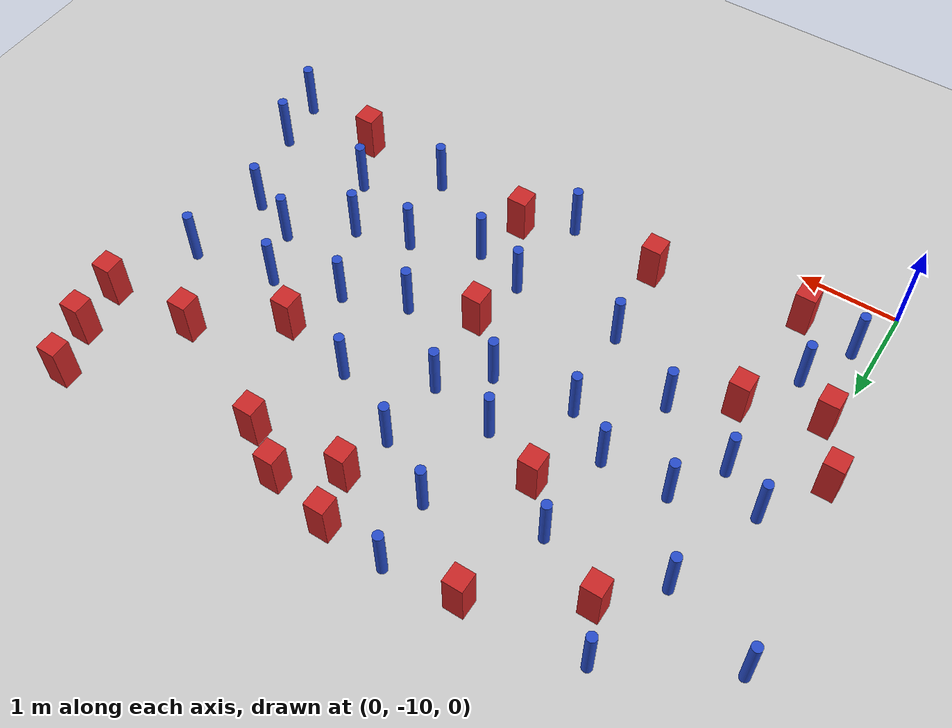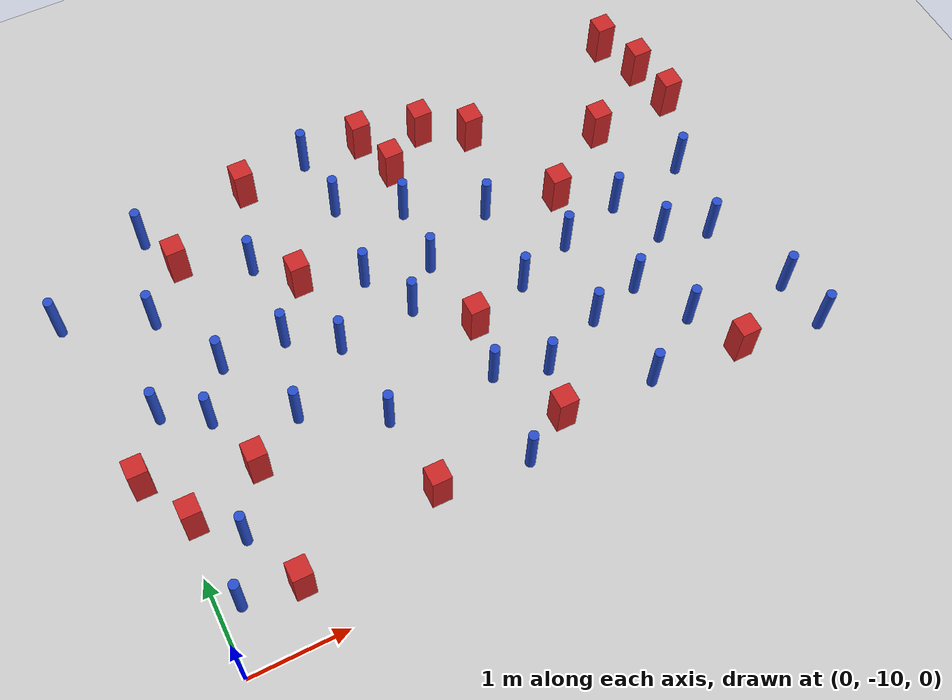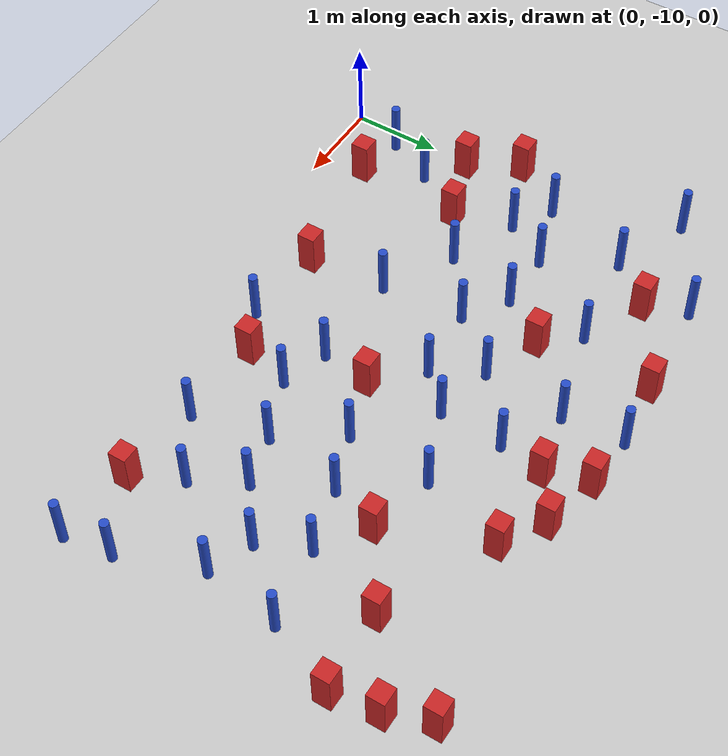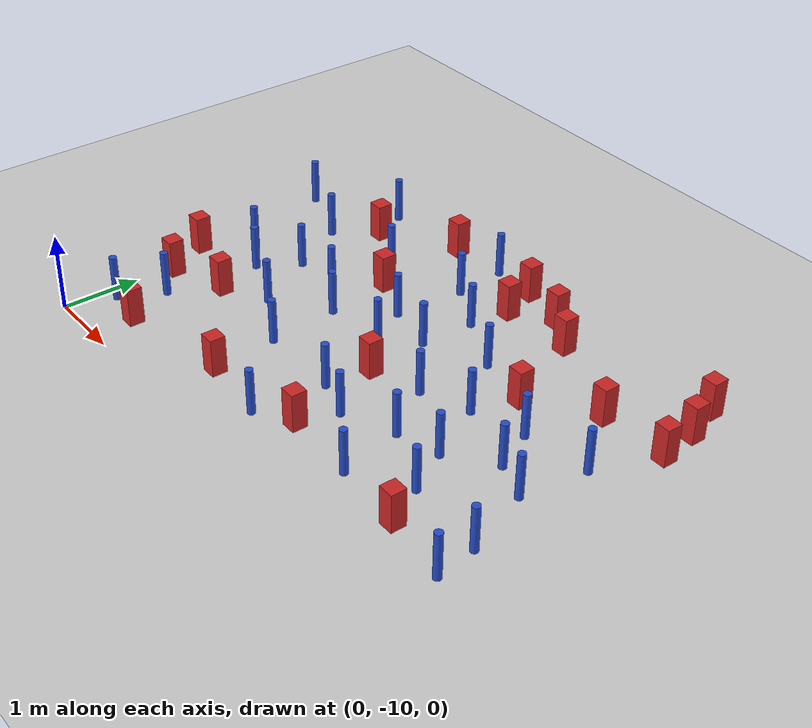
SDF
<sdf version="1.6">
 <world name="default">
  <model name="ground_plane">
   <static>1</static>
   <link name="link">
    <collision name="collision">
     <geometry><plane><normal>0 0 1</normal><size>100 100</size></plane></geometry>
     <surface><friction><ode><mu>100</mu><mu2>50</mu2></ode></friction></surface>
    </collision>
    <visual name="visual">
     <cast_shadows>0</cast_shadows>
     <geometry><plane><normal>0 0 1</normal><size>100 100</size></plane></geometry>
     <material>
      <ambient>1.0 1.0 1.0 1.0</ambient>
      <diffuse>0.8 0.8 0.8 1.0</diffuse>
      <specular>0.01 0.01 0.01 1.000000</specular>
     </material>
    </visual>
   </link>
  </model>
  <model name="pole_obstacle6">
   <static>true</static>
   <pose>0.202433005379 -7.33911236088 -9.47619616065e-06 5.49618799737e-07 2.36310414069e-07 -1.55090534795e-07</pose>
   <link name="link">
    <pose>0 0 0.3 0 -0 0</pose>
    <inertial>
     <mass>1</mass>
     <inertia><ixx>0.145833</ixx><ixy>0</ixy><ixz>0</ixz><iyy>0.145833</iyy><iyz>0</iyz><izz>0.125</izz></inertia>
    </inertial>
    <collision name="collision">
     <geometry><cylinder><radius>0.05</radius><length>.6</length></cylinder></geometry>
    </collision>
    <visual name="visual">
     <geometry><cylinder><radius>0.05</radius><length>.6</length></cylinder></geometry>
     <material>
      <script><name>Gazebo/Blue</name><uri>file://media/materials/scripts/gazebo.material</uri></script>
     </material>
    </visual>
   </link>
  </model>
  <model name="square_post_obstacle20">
   <static>true</static>
   <pose>1.99056706824 -6.56412992524 -6.11067671241e-07 -5.50515727128e-06 -8.79689657224e-07 2.37013304536e-05</pose>
   <link name="link">
    <pose>0 0 0.25 0 -0 0</pose>
    <inertial>
     <mass>100</mass>
     <inertia>
      <ixx>0.166667</ixx>
      <ixy>0</ixy>
      <ixz>0</ixz>
      <iyy>0.166667</iyy>
      <iyz>0</iyz>
      <izz>0.166667</izz>
     </inertia>
    </inertial>
    <collision name="collision"><geometry><box><size>.2 .2 .5</size></box></geometry></collision>
    <visual name="visual">
     <geometry><box><size>.2 .2 .5</size></box></geometry>
     <material>
      <script><name>Gazebo/Red</name><uri>file://media/materials/scripts/gazebo.material</uri></script>
     </material>
    </visual>
   </link>
  </model>
  <model name="pole_obstacle17">
   <static>true</static>
   <pose>0.529014926173 -6.34254856775 -9.47619616065e-06 5.49618799737e-07 2.36310414064e-07 -1.55090534796e-07</pose>
   <link name="link">
    <pose>0 0 0.3 0 -0 0</pose>
    <inertial>
     <mass>1</mass>
     <inertia><ixx>0.145833</ixx><ixy>0</ixy><ixz>0</ixz><iyy>0.145833</iyy><iyz>0</iyz><izz>0.125</izz></inertia>
    </inertial>
    <collision name="collision">
     <geometry><cylinder><radius>0.05</radius><length>.6</length></cylinder></geometry>
    </collision>
    <visual name="visual">
     <geometry><cylinder><radius>0.05</radius><length>.6</length></cylinder></geometry>
     <material>
      <script><name>Gazebo/Blue</name><uri>file://media/materials/scripts/gazebo.material</uri></script>
     </material>
    </visual>
   </link>
  </model>
  <model name="square_post_obstacle24">
   <static>true</static>
   <pose>6.39824471717 -5.68714983444 -6.11067671241e-07 -5.50515727128e-06 -8.79689657224e-07 2.37013304536e-05</pose>
   <link name="link">
    <pose>0 0 0.25 0 -0 0</pose>
    <inertial>
     <mass>100</mass>
     <inertia>
      <ixx>0.166667</ixx>
      <ixy>0</ixy>
      <ixz>0</ixz>
      <iyy>0.166667</iyy>
      <iyz>0</iyz>
      <izz>0.166667</izz>
     </inertia>
    </inertial>
    <collision name="collision"><geometry><box><size>.2 .2 .5</size></box></geometry></collision>
    <visual name="visual">
     <geometry><box><size>.2 .2 .5</size></box></geometry>
     <material>
      <script><name>Gazebo/Red</name><uri>file://media/materials/scripts/gazebo.material</uri></script>
     </material>
    </visual>
   </link>
  </model>
  <model name="pole_obstacle24">
   <static>true</static>
   <pose>1.38895360051 -7.91625873299 -9.47619616065e-06 5.49618799737e-07 2.36310414061e-07 -1.550905348e-07</pose>
   <link name="link">
    <pose>0 0 0.3 0 -0 0</pose>
    <inertial>
     <mass>1</mass>
     <inertia><ixx>0.145833</ixx><ixy>0</ixy><ixz>0</ixz><iyy>0.145833</iyy><iyz>0</iyz><izz>0.125</izz></inertia>
    </inertial>
    <collision name="collision">
     <geometry><cylinder><radius>0.05</radius><length>.6</length></cylinder></geometry>
    </collision>
    <visual name="visual">
     <geometry><cylinder><radius>0.05</radius><length>.6</length></cylinder></geometry>
     <material>
      <script><name>Gazebo/Blue</name><uri>file://media/materials/scripts/gazebo.material</uri></script>
     </material>
    </visual>
   </link>
  </model>
  <model name="pole_obstacle26">
   <static>true</static>
   <pose>1.60109463014 -7.09741458702 -9.47619616065e-06 5.49618799737e-07 2.36310414061e-07 -1.550905348e-07</pose>
   <link name="link">
    <pose>0 0 0.3 0 -0 0</pose>
    <inertial>
     <mass>1</mass>
     <inertia><ixx>0.145833</ixx><ixy>0</ixy><ixz>0</ixz><iyy>0.145833</iyy><iyz>0</iyz><izz>0.125</izz></inertia>
    </inertial>
    <collision name="collision">
     <geometry><cylinder><radius>0.05</radius><length>.6</length></cylinder></geometry>
    </collision>
    <visual name="visual">
     <geometry><cylinder><radius>0.05</radius><length>.6</length></cylinder></geometry>
     <material>
      <script><name>Gazebo/Blue</name><uri>file://media/materials/scripts/gazebo.material</uri></script>
     </material>
    </visual>
   </link>
  </model>
  <model name="pole_obstacle28">
   <static>true</static>
   <pose>4.61884856585 -9.07026900919 -9.47619616065e-06 5.49618799737e-07 2.36310414065e-07 -1.55090534796e-07</pose>
   <link name="link">
    <pose>0 0 0.3 0 -0 0</pose>
    <inertial>
     <mass>1</mass>
     <inertia><ixx>0.145833</ixx><ixy>0</ixy><ixz>0</ixz><iyy>0.145833</iyy><iyz>0</iyz><izz>0.125</izz></inertia>
    </inertial>
    <collision name="collision">
     <geometry><cylinder><radius>0.05</radius><length>.6</length></cylinder></geometry>
    </collision>
    <visual name="visual">
     <geometry><cylinder><radius>0.05</radius><length>.6</length></cylinder></geometry>
     <material>
      <script><name>Gazebo/Blue</name><uri>file://media/materials/scripts/gazebo.material</uri></script>
     </material>
    </visual>
   </link>
  </model>
  <model name="pole_obstacle38">
   <static>true</static>
   <pose>6.01574682659 -7.84614838211 -9.47619616065e-06 5.49618799737e-07 2.36310414037e-07 -1.55090534814e-07</pose>
   <link name="link">
    <pose>0 0 0.3 0 -0 0</pose>
    <inertial>
     <mass>1</mass>
     <inertia><ixx>0.145833</ixx><ixy>0</ixy><ixz>0</ixz><iyy>0.145833</iyy><iyz>0</iyz><izz>0.125</izz></inertia>
    </inertial>
    <collision name="collision">
     <geometry><cylinder><radius>0.05</radius><length>.6</length></cylinder></geometry>
    </collision>
    <visual name="visual">
     <geometry><cylinder><radius>0.05</radius><length>.6</length></cylinder></geometry>
     <material>
      <script><name>Gazebo/Blue</name><uri>file://media/materials/scripts/gazebo.material</uri></script>
     </material>
    </visual>
   </link>
  </model>
  <model name="square_post_obstacle39">
   <static>true</static>
   <pose>4.80716517699 -6.77869618184 -6.11067671241e-07 -5.50515727128e-06 -8.79689657224e-07 2.37013304536e-05</pose>
   <link name="link">
    <pose>0 0 0.25 0 -0 0</pose>
    <inertial>
     <mass>100</mass>
     <inertia>
      <ixx>0.166667</ixx>
      <ixy>0</ixy>
      <ixz>0</ixz>
      <iyy>0.166667</iyy>
      <iyz>0</iyz>
      <izz>0.166667</izz>
     </inertia>
    </inertial>
    <collision name="collision"><geometry><box><size>.2 .2 .5</size></box></geometry></collision>
    <visual name="visual">
     <geometry><box><size>.2 .2 .5</size></box></geometry>
     <material>
      <script><name>Gazebo/Red</name><uri>file://media/materials/scripts/gazebo.material</uri></script>
     </material>
    </visual>
   </link>
  </model>
  <model name="pole_obstacle41">
   <static>true</static>
   <pose>2.88102722438 -7.33411168156 -9.47619616065e-06 5.49618799738e-07 2.3631041406e-07 -1.55090534801e-07</pose>
   <link name="link">
    <pose>0 0 0.3 0 -0 0</pose>
    <inertial>
     <mass>1</mass>
     <inertia><ixx>0.145833</ixx><ixy>0</ixy><ixz>0</ixz><iyy>0.145833</iyy><iyz>0</iyz><izz>0.125</izz></inertia>
    </inertial>
    <collision name="collision">
     <geometry><cylinder><radius>0.05</radius><length>.6</length></cylinder></geometry>
    </collision>
    <visual name="visual">
     <geometry><cylinder><radius>0.05</radius><length>.6</length></cylinder></geometry>
     <material>
      <script><name>Gazebo/Blue</name><uri>file://media/materials/scripts/gazebo.material</uri></script>
     </material>
    </visual>
   </link>
  </model>
  <model name="square_post_obstacle45">
   <static>true</static>
   <pose>6.4774506653 -6.19900447313 -6.11067671241e-07 -5.50515727128e-06 -8.79689657224e-07 2.37013304536e-05</pose>
   <link name="link">
    <pose>0 0 0.25 0 -0 0</pose>
    <inertial>
     <mass>100</mass>
     <inertia>
      <ixx>0.166667</ixx>
      <ixy>0</ixy>
      <ixz>0</ixz>
      <iyy>0.166667</iyy>
      <iyz>0</iyz>
      <izz>0.166667</izz>
     </inertia>
    </inertial>
    <collision name="collision"><geometry><box><size>.2 .2 .5</size></box></geometry></collision>
    <visual name="visual">
     <geometry><box><size>.2 .2 .5</size></box></geometry>
     <material>
      <script><name>Gazebo/Red</name><uri>file://media/materials/scripts/gazebo.material</uri></script>
     </material>
    </visual>
   </link>
  </model>
  <model name="pole_obstacle47">
   <static>true</static>
   <pose>5.30130645112 -7.13895431666 -9.47619616065e-06 5.49618799737e-07 2.36310414037e-07 -1.55090534814e-07</pose>
   <link name="link">
    <pose>0 0 0.3 0 -0 0</pose>
    <inertial>
     <mass>1</mass>
     <inertia><ixx>0.145833</ixx><ixy>0</ixy><ixz>0</ixz><iyy>0.145833</iyy><iyz>0</iyz><izz>0.125</izz></inertia>
    </inertial>
    <collision name="collision">
     <geometry><cylinder><radius>0.05</radius><length>.6</length></cylinder></geometry>
    </collision>
    <visual name="visual">
     <geometry><cylinder><radius>0.05</radius><length>.6</length></cylinder></geometry>
     <material>
      <script><name>Gazebo/Blue</name><uri>file://media/materials/scripts/gazebo.material</uri></script>
     </material>
    </visual>
   </link>
  </model>
  <model name="pole_obstacle48">
   <static>true</static>
   <pose>0.487421027341 -8.8359410219 -9.47619616065e-06 5.49618799737e-07 2.36310414043e-07 -1.5509053481e-07</pose>
   <link name="link">
    <pose>0 0 0.3 0 -0 0</pose>
    <inertial>
     <mass>1</mass>
     <inertia><ixx>0.145833</ixx><ixy>0</ixy><ixz>0</ixz><iyy>0.145833</iyy><iyz>0</iyz><izz>0.125</izz></inertia>
    </inertial>
    <collision name="collision">
     <geometry><cylinder><radius>0.05</radius><length>.6</length></cylinder></geometry>
    </collision>
    <visual name="visual">
     <geometry><cylinder><radius>0.05</radius><length>.6</length></cylinder></geometry>
     <material>
      <script><name>Gazebo/Blue</name><uri>file://media/materials/scripts/gazebo.material</uri></script>
     </material>
    </visual>
   </link>
  </model>
  <model name="square_post_obstacle54">
   <static>true</static>
   <pose>6.22459683851 -5.21466603171 -6.11067671241e-07 -5.50515727128e-06 -8.79689657224e-07 2.37013304536e-05</pose>
   <link name="link">
    <pose>0 0 0.25 0 -0 0</pose>
    <inertial>
     <mass>100</mass>
     <inertia>
      <ixx>0.166667</ixx>
      <ixy>0</ixy>
      <ixz>0</ixz>
      <iyy>0.166667</iyy>
      <iyz>0</iyz>
      <izz>0.166667</izz>
     </inertia>
    </inertial>
    <collision name="collision"><geometry><box><size>.2 .2 .5</size></box></geometry></collision>
    <visual name="visual">
     <geometry><box><size>.2 .2 .5</size></box></geometry>
     <material>
      <script><name>Gazebo/Red</name><uri>file://media/materials/scripts/gazebo.material</uri></script>
     </material>
    </visual>
   </link>
  </model>
  <model name="square_post_obstacle59">
   <static>true</static>
   <pose>1.90894698467 -5.29724941587 -6.11067671241e-07 -5.50515727128e-06 -8.79689657224e-07 2.37013304536e-05</pose>
   <link name="link">
    <pose>0 0 0.25 0 -0 0</pose>
    <inertial>
     <mass>100</mass>
     <inertia>
      <ixx>0.166667</ixx>
      <ixy>0</ixy>
      <ixz>0</ixz>
      <iyy>0.166667</iyy>
      <iyz>0</iyz>
      <izz>0.166667</izz>
     </inertia>
    </inertial>
    <collision name="collision"><geometry><box><size>.2 .2 .5</size></box></geometry></collision>
    <visual name="visual">
     <geometry><box><size>.2 .2 .5</size></box></geometry>
     <material>
      <script><name>Gazebo/Red</name><uri>file://media/materials/scripts/gazebo.material</uri></script>
     </material>
    </visual>
   </link>
  </model>
  <model name="square_post_obstacle60">
   <static>true</static>
   <pose>4.35033200522 -5.68162798647 -6.11067671241e-07 -5.50515727128e-06 -8.79689657224e-07 2.37013304536e-05</pose>
   <link name="link">
    <pose>0 0 0.25 0 -0 0</pose>
    <inertial>
     <mass>100</mass>
     <inertia>
      <ixx>0.166667</ixx>
      <ixy>0</ixy>
      <ixz>0</ixz>
      <iyy>0.166667</iyy>
      <iyz>0</iyz>
      <izz>0.166667</izz>
     </inertia>
    </inertial>
    <collision name="collision"><geometry><box><size>.2 .2 .5</size></box></geometry></collision>
    <visual name="visual">
     <geometry><box><size>.2 .2 .5</size></box></geometry>
     <material>
      <script><name>Gazebo/Red</name><uri>file://media/materials/scripts/gazebo.material</uri></script>
     </material>
    </visual>
   </link>
  </model>
  <model name="square_post_obstacle64">
   <static>true</static>
   <pose>3.40252754727 -5.73255571265 -6.11067671241e-07 -5.50515727128e-06 -8.79689657224e-07 2.37013304536e-05</pose>
   <link name="link">
    <pose>0 0 0.25 0 -0 0</pose>
    <inertial>
     <mass>100</mass>
     <inertia>
      <ixx>0.166667</ixx>
      <ixy>0</ixy>
      <ixz>0</ixz>
      <iyy>0.166667</iyy>
      <iyz>0</iyz>
      <izz>0.166667</izz>
     </inertia>
    </inertial>
    <collision name="collision"><geometry><box><size>.2 .2 .5</size></box></geometry></collision>
    <visual name="visual">
     <geometry><box><size>.2 .2 .5</size></box></geometry>
     <material>
      <script><name>Gazebo/Red</name><uri>file://media/materials/scripts/gazebo.material</uri></script>
     </material>
    </visual>
   </link>
  </model>
  <model name="pole_obstacle69">
   <static>true</static>
   <pose>4.61685882203 -7.33412709216 -9.47619616065e-06 5.49618799737e-07 2.36310414037e-07 -1.55090534814e-07</pose>
   <link name="link">
    <pose>0 0 0.3 0 -0 0</pose>
    <inertial>
     <mass>1</mass>
     <inertia><ixx>0.145833</ixx><ixy>0</ixy><ixz>0</ixz><iyy>0.145833</iyy><iyz>0</iyz><izz>0.125</izz></inertia>
    </inertial>
    <collision name="collision">
     <geometry><cylinder><radius>0.05</radius><length>.6</length></cylinder></geometry>
    </collision>
    <visual name="visual">
     <geometry><cylinder><radius>0.05</radius><length>.6</length></cylinder></geometry>
     <material>
      <script><name>Gazebo/Blue</name><uri>file://media/materials/scripts/gazebo.material</uri></script>
     </material>
    </visual>
   </link>
  </model>
  <model name="pole_obstacle70">
   <static>true</static>
   <pose>4.99591208815 -8.08213954474 -9.47619616065e-06 5.49618799737e-07 2.36310414065e-07 -1.55090534796e-07</pose>
   <link name="link">
    <pose>0 0 0.3 0 -0 0</pose>
    <inertial>
     <mass>1</mass>
     <inertia><ixx>0.145833</ixx><ixy>0</ixy><ixz>0</ixz><iyy>0.145833</iyy><iyz>0</iyz><izz>0.125</izz></inertia>
    </inertial>
    <collision name="collision">
     <geometry><cylinder><radius>0.05</radius><length>.6</length></cylinder></geometry>
    </collision>
    <visual name="visual">
     <geometry><cylinder><radius>0.05</radius><length>.6</length></cylinder></geometry>
     <material>
      <script><name>Gazebo/Blue</name><uri>file://media/materials/scripts/gazebo.material</uri></script>
     </material>
    </visual>
   </link>
  </model>
  <model name="square_post_obstacle79">
   <static>true</static>
   <pose>-0.181883862286 -7.93237535298 -6.11067671241e-07 -5.50515727128e-06 -8.79689657224e-07 2.37013304536e-05</pose>
   <link name="link">
    <pose>0 0 0.25 0 -0 0</pose>
    <inertial>
     <mass>100</mass>
     <inertia>
      <ixx>0.166667</ixx>
      <ixy>0</ixy>
      <ixz>0</ixz>
      <iyy>0.166667</iyy>
      <iyz>0</iyz>
      <izz>0.166667</izz>
     </inertia>
    </inertial>
    <collision name="collision"><geometry><box><size>.2 .2 .5</size></box></geometry></collision>
    <visual name="visual">
     <geometry><box><size>.2 .2 .5</size></box></geometry>
     <material>
      <script><name>Gazebo/Red</name><uri>file://media/materials/scripts/gazebo.material</uri></script>
     </material>
    </visual>
   </link>
  </model>
  <model name="pole_obstacle80">
   <static>true</static>
   <pose>0.941242308076 -7.10136682126 -9.47619616065e-06 5.49618799737e-07 2.36310414065e-07 -1.55090534796e-07</pose>
   <link name="link">
    <pose>0 0 0.3 0 -0 0</pose>
    <inertial>
     <mass>1</mass>
     <inertia><ixx>0.145833</ixx><ixy>0</ixy><ixz>0</ixz><iyy>0.145833</iyy><iyz>0</iyz><izz>0.125</izz></inertia>
    </inertial>
    <collision name="collision">
     <geometry><cylinder><radius>0.05</radius><length>.6</length></cylinder></geometry>
    </collision>
    <visual name="visual">
     <geometry><cylinder><radius>0.05</radius><length>.6</length></cylinder></geometry>
     <material>
      <script><name>Gazebo/Blue</name><uri>file://media/materials/scripts/gazebo.material</uri></script>
     </material>
    </visual>
   </link>
  </model>
  <model name="pole_obstacle84">
   <static>true</static>
   <pose>3.99803008245 -7.56933853639 -9.47619616065e-06 5.49618799737e-07 2.36310414049e-07 -1.55090534808e-07</pose>
   <link name="link">
    <pose>0 0 0.3 0 -0 0</pose>
    <inertial>
     <mass>1</mass>
     <inertia><ixx>0.145833</ixx><ixy>0</ixy><ixz>0</ixz><iyy>0.145833</iyy><iyz>0</iyz><izz>0.125</izz></inertia>
    </inertial>
    <collision name="collision">
     <geometry><cylinder><radius>0.05</radius><length>.6</length></cylinder></geometry>
    </collision>
    <visual name="visual">
     <geometry><cylinder><radius>0.05</radius><length>.6</length></cylinder></geometry>
     <material>
      <script><name>Gazebo/Blue</name><uri>file://media/materials/scripts/gazebo.material</uri></script>
     </material>
    </visual>
   </link>
  </model>
  <model name="square_post_obstacle80">
   <static>true</static>
   <pose>0.965141884142 -5.85441261282 -6.11067671241e-07 -5.50515727128e-06 -8.79689657224e-07 2.37013304536e-05</pose>
   <link name="link">
    <pose>0 0 0.25 0 -0 0</pose>
    <inertial>
     <mass>100</mass>
     <inertia>
      <ixx>0.166667</ixx>
      <ixy>0</ixy>
      <ixz>0</ixz>
      <iyy>0.166667</iyy>
      <iyz>0</iyz>
      <izz>0.166667</izz>
     </inertia>
    </inertial>
    <collision name="collision"><geometry><box><size>.2 .2 .5</size></box></geometry></collision>
    <visual name="visual">
     <geometry><box><size>.2 .2 .5</size></box></geometry>
     <material>
      <script><name>Gazebo/Red</name><uri>file://media/materials/scripts/gazebo.material</uri></script>
     </material>
    </visual>
   </link>
  </model>
  <model name="pole_obstacle86">
   <static>true</static>
   <pose>6.34438785384 -8.71972510853 -9.47619616065e-06 5.49618799737e-07 2.36310414065e-07 -1.55090534796e-07</pose>
   <link name="link">
    <pose>0 0 0.3 0 -0 0</pose>
    <inertial>
     <mass>1</mass>
     <inertia><ixx>0.145833</ixx><ixy>0</ixy><ixz>0</ixz><iyy>0.145833</iyy><iyz>0</iyz><izz>0.125</izz></inertia>
    </inertial>
    <collision name="collision">
     <geometry><cylinder><radius>0.05</radius><length>.6</length></cylinder></geometry>
    </collision>
    <visual name="visual">
     <geometry><cylinder><radius>0.05</radius><length>.6</length></cylinder></geometry>
     <material>
      <script><name>Gazebo/Blue</name><uri>file://media/materials/scripts/gazebo.material</uri></script>
     </material>
    </visual>
   </link>
  </model>
  <model name="pole_obstacle97">
   <static>true</static>
   <pose>2.15401328796 -8.3403994665 -9.4761961606e-06 5.49618799729e-07 2.36310414e-07 -1.55090534824e-07</pose>
   <link name="link">
    <pose>0 0 0.3 0 -0 0</pose>
    <inertial>
     <mass>1</mass>
     <inertia><ixx>0.145833</ixx><ixy>0</ixy><ixz>0</ixz><iyy>0.145833</iyy><iyz>0</iyz><izz>0.125</izz></inertia>
    </inertial>
    <collision name="collision">
     <geometry><cylinder><radius>0.05</radius><length>.6</length></cylinder></geometry>
    </collision>
    <visual name="visual">
     <geometry><cylinder><radius>0.05</radius><length>.6</length></cylinder></geometry>
     <material>
      <script><name>Gazebo/Blue</name><uri>file://media/materials/scripts/gazebo.material</uri></script>
     </material>
    </visual>
   </link>
  </model>
  <model name="square_post_obstacle91">
   <static>true</static>
   <pose>0.770097542105 -9.46442601788 -6.11067671241e-07 -5.50515727128e-06 -8.79689657224e-07 2.37013304536e-05</pose>
   <link name="link">
    <pose>0 0 0.25 0 -0 0</pose>
    <inertial>
     <mass>100</mass>
     <inertia>
      <ixx>0.166667</ixx>
      <ixy>0</ixy>
      <ixz>0</ixz>
      <iyy>0.166667</iyy>
      <iyz>0</iyz>
      <izz>0.166667</izz>
     </inertia>
    </inertial>
    <collision name="collision"><geometry><box><size>.2 .2 .5</size></box></geometry></collision>
    <visual name="visual">
     <geometry><box><size>.2 .2 .5</size></box></geometry>
     <material>
      <script><name>Gazebo/Red</name><uri>file://media/materials/scripts/gazebo.material</uri></script>
     </material>
    </visual>
   </link>
  </model>
  <model name="pole_obstacle110">
   <static>true</static>
   <pose>0.756620636022 -5.3974451298 -9.47619616065e-06 5.49618799737e-07 2.36310414065e-07 -1.55090534796e-07</pose>
   <link name="link">
    <pose>0 0 0.3 0 -0 0</pose>
    <inertial>
     <mass>1</mass>
     <inertia><ixx>0.145833</ixx><ixy>0</ixy><ixz>0</ixz><iyy>0.145833</iyy><iyz>0</iyz><izz>0.125</izz></inertia>
    </inertial>
    <collision name="collision">
     <geometry><cylinder><radius>0.05</radius><length>.6</length></cylinder></geometry>
    </collision>
    <visual name="visual">
     <geometry><cylinder><radius>0.05</radius><length>.6</length></cylinder></geometry>
     <material>
      <script><name>Gazebo/Blue</name><uri>file://media/materials/scripts/gazebo.material</uri></script>
     </material>
    </visual>
   </link>
  </model>
  <model name="pole_obstacle117">
   <static>true</static>
   <pose>6.14665650331 -6.99310510793 -9.47619616065e-06 5.49618799737e-07 2.36310414037e-07 -1.55090534814e-07</pose>
   <link name="link">
    <pose>0 0 0.3 0 -0 0</pose>
    <inertial>
     <mass>1</mass>
     <inertia><ixx>0.145833</ixx><ixy>0</ixy><ixz>0</ixz><iyy>0.145833</iyy><iyz>0</iyz><izz>0.125</izz></inertia>
    </inertial>
    <collision name="collision">
     <geometry><cylinder><radius>0.05</radius><length>.6</length></cylinder></geometry>
    </collision>
    <visual name="visual">
     <geometry><cylinder><radius>0.05</radius><length>.6</length></cylinder></geometry>
     <material>
      <script><name>Gazebo/Blue</name><uri>file://media/materials/scripts/gazebo.material</uri></script>
     </material>
    </visual>
   </link>
  </model>
  <model name="square_post_obstacle107">
   <static>true</static>
   <pose>0.848264276514 -8.24824048516 -6.11067671241e-07 -5.50515727128e-06 -8.79689657224e-07 2.37013304536e-05</pose>
   <link name="link">
    <pose>0 0 0.25 0 -0 0</pose>
    <inertial>
     <mass>100</mass>
     <inertia>
      <ixx>0.166667</ixx>
      <ixy>0</ixy>
      <ixz>0</ixz>
      <iyy>0.166667</iyy>
      <iyz>0</iyz>
      <izz>0.166667</izz>
     </inertia>
    </inertial>
    <collision name="collision"><geometry><box><size>.2 .2 .5</size></box></geometry></collision>
    <visual name="visual">
     <geometry><box><size>.2 .2 .5</size></box></geometry>
     <material>
      <script><name>Gazebo/Red</name><uri>file://media/materials/scripts/gazebo.material</uri></script>
     </material>
    </visual>
   </link>
  </model>
  <model name="square_post_obstacle110">
   <static>true</static>
   <pose>3.63714298275 -9.0268368773 -6.11067671241e-07 -5.50515727128e-06 -8.79689657224e-07 2.37013304536e-05</pose>
   <link name="link">
    <pose>0 0 0.25 0 -0 0</pose>
    <inertial>
     <mass>100</mass>
     <inertia>
      <ixx>0.166667</ixx>
      <ixy>0</ixy>
      <ixz>0</ixz>
      <iyy>0.166667</iyy>
      <iyz>0</iyz>
      <izz>0.166667</izz>
     </inertia>
    </inertial>
    <collision name="collision"><geometry><box><size>.2 .2 .5</size></box></geometry></collision>
    <visual name="visual">
     <geometry><box><size>.2 .2 .5</size></box></geometry>
     <material>
      <script><name>Gazebo/Red</name><uri>file://media/materials/scripts/gazebo.material</uri></script>
     </material>
    </visual>
   </link>
  </model>
  <model name="pole_obstacle120">
   <static>true</static>
   <pose>1.63582648187 -6.18596606573 -9.47619616065e-06 5.49618799737e-07 2.36310414061e-07 -1.550905348e-07</pose>
   <link name="link">
    <pose>0 0 0.3 0 -0 0</pose>
    <inertial>
     <mass>1</mass>
     <inertia><ixx>0.145833</ixx><ixy>0</ixy><ixz>0</ixz><iyy>0.145833</iyy><iyz>0</iyz><izz>0.125</izz></inertia>
    </inertial>
    <collision name="collision">
     <geometry><cylinder><radius>0.05</radius><length>.6</length></cylinder></geometry>
    </collision>
    <visual name="visual">
     <geometry><cylinder><radius>0.05</radius><length>.6</length></cylinder></geometry>
     <material>
      <script><name>Gazebo/Blue</name><uri>file://media/materials/scripts/gazebo.material</uri></script>
     </material>
    </visual>
   </link>
  </model>
  <model name="pole_obstacle124">
   <static>true</static>
   <pose>4.44233901275 -8.2378189598 -9.47619616065e-06 5.49618799737e-07 2.36310414065e-07 -1.55090534796e-07</pose>
   <link name="link">
    <pose>0 0 0.3 0 -0 0</pose>
    <inertial>
     <mass>1</mass>
     <inertia><ixx>0.145833</ixx><ixy>0</ixy><ixz>0</ixz><iyy>0.145833</iyy><iyz>0</iyz><izz>0.125</izz></inertia>
    </inertial>
    <collision name="collision">
     <geometry><cylinder><radius>0.05</radius><length>.6</length></cylinder></geometry>
    </collision>
    <visual name="visual">
     <geometry><cylinder><radius>0.05</radius><length>.6</length></cylinder></geometry>
     <material>
      <script><name>Gazebo/Blue</name><uri>file://media/materials/scripts/gazebo.material</uri></script>
     </material>
    </visual>
   </link>
  </model>
  <model name="pole_obstacle127">
   <static>true</static>
   <pose>2.0690813472 -7.41584183127 -9.47619616065e-06 5.49618799738e-07 2.3631041406e-07 -1.55090534801e-07</pose>
   <link name="link">
    <pose>0 0 0.3 0 -0 0</pose>
    <inertial>
     <mass>1</mass>
     <inertia><ixx>0.145833</ixx><ixy>0</ixy><ixz>0</ixz><iyy>0.145833</iyy><iyz>0</iyz><izz>0.125</izz></inertia>
    </inertial>
    <collision name="collision">
     <geometry><cylinder><radius>0.05</radius><length>.6</length></cylinder></geometry>
    </collision>
    <visual name="visual">
     <geometry><cylinder><radius>0.05</radius><length>.6</length></cylinder></geometry>
     <material>
      <script><name>Gazebo/Blue</name><uri>file://media/materials/scripts/gazebo.material</uri></script>
     </material>
    </visual>
   </link>
  </model>
  <model name="pole_obstacle128">
   <static>true</static>
   <pose>6.42211823039 -9.24931616566 -9.47619616065e-06 5.49618799737e-07 2.36310414065e-07 -1.55090534796e-07</pose>
   <link name="link">
    <pose>0 0 0.3 0 -0 0</pose>
    <inertial>
     <mass>1</mass>
     <inertia><ixx>0.145833</ixx><ixy>0</ixy><ixz>0</ixz><iyy>0.145833</iyy><iyz>0</iyz><izz>0.125</izz></inertia>
    </inertial>
    <collision name="collision">
     <geometry><cylinder><radius>0.05</radius><length>.6</length></cylinder></geometry>
    </collision>
    <visual name="visual">
     <geometry><cylinder><radius>0.05</radius><length>.6</length></cylinder></geometry>
     <material>
      <script><name>Gazebo/Blue</name><uri>file://media/materials/scripts/gazebo.material</uri></script>
     </material>
    </visual>
   </link>
  </model>
  <model name="pole_obstacle135">
   <static>true</static>
   <pose>2.5949242647 -6.81590964531 -9.47619616065e-06 5.49618799738e-07 2.3631041406e-07 -1.55090534801e-07</pose>
   <link name="link">
    <pose>0 0 0.3 0 -0 0</pose>
    <inertial>
     <mass>1</mass>
     <inertia><ixx>0.145833</ixx><ixy>0</ixy><ixz>0</ixz><iyy>0.145833</iyy><iyz>0</iyz><izz>0.125</izz></inertia>
    </inertial>
    <collision name="collision">
     <geometry><cylinder><radius>0.05</radius><length>.6</length></cylinder></geometry>
    </collision>
    <visual name="visual">
     <geometry><cylinder><radius>0.05</radius><length>.6</length></cylinder></geometry>
     <material>
      <script><name>Gazebo/Blue</name><uri>file://media/materials/scripts/gazebo.material</uri></script>
     </material>
    </visual>
   </link>
  </model>
  <model name="square_post_obstacle118">
   <static>true</static>
   <pose>3.24986439558 -5.248805933 -6.11067671241e-07 -5.50515727128e-06 -8.79689657224e-07 2.37013304536e-05</pose>
   <link name="link">
    <pose>0 0 0.25 0 -0 0</pose>
    <inertial>
     <mass>100</mass>
     <inertia>
      <ixx>0.166667</ixx>
      <ixy>0</ixy>
      <ixz>0</ixz>
      <iyy>0.166667</iyy>
      <iyz>0</iyz>
      <izz>0.166667</izz>
     </inertia>
    </inertial>
    <collision name="collision"><geometry><box><size>.2 .2 .5</size></box></geometry></collision>
    <visual name="visual">
     <geometry><box><size>.2 .2 .5</size></box></geometry>
     <material>
      <script><name>Gazebo/Red</name><uri>file://media/materials/scripts/gazebo.material</uri></script>
     </material>
    </visual>
   </link>
  </model>
  <model name="pole_obstacle137">
   <static>true</static>
   <pose>3.25745854151 -8.35117955762 -9.4761961606e-06 5.49618799729e-07 2.36310414e-07 -1.55090534824e-07</pose>
   <link name="link">
    <pose>0 0 0.3 0 -0 0</pose>
    <inertial>
     <mass>1</mass>
     <inertia><ixx>0.145833</ixx><ixy>0</ixy><ixz>0</ixz><iyy>0.145833</iyy><iyz>0</iyz><izz>0.125</izz></inertia>
    </inertial>
    <collision name="collision">
     <geometry><cylinder><radius>0.05</radius><length>.6</length></cylinder></geometry>
    </collision>
    <visual name="visual">
     <geometry><cylinder><radius>0.05</radius><length>.6</length></cylinder></geometry>
     <material>
      <script><name>Gazebo/Blue</name><uri>file://media/materials/scripts/gazebo.material</uri></script>
     </material>
    </visual>
   </link>
  </model>
  <model name="square_post_obstacle132">
   <static>true</static>
   <pose>2.24066996799 -9.19861403667 -6.11067671241e-07 -5.50515727128e-06 -8.79689657224e-07 2.37013304536e-05</pose>
   <link name="link">
    <pose>0 0 0.25 0 -0 0</pose>
    <inertial>
     <mass>100</mass>
     <inertia>
      <ixx>0.166667</ixx>
      <ixy>0</ixy>
      <ixz>0</ixz>
      <iyy>0.166667</iyy>
      <iyz>0</iyz>
      <izz>0.166667</izz>
     </inertia>
    </inertial>
    <collision name="collision"><geometry><box><size>.2 .2 .5</size></box></geometry></collision>
    <visual name="visual">
     <geometry><box><size>.2 .2 .5</size></box></geometry>
     <material>
      <script><name>Gazebo/Red</name><uri>file://media/materials/scripts/gazebo.material</uri></script>
     </material>
    </visual>
   </link>
  </model>
  <model name="pole_obstacle150">
   <static>true</static>
   <pose>2.68094622172 -5.89416542291 -9.47619616065e-06 5.49618799738e-07 2.3631041406e-07 -1.55090534801e-07</pose>
   <link name="link">
    <pose>0 0 0.3 0 -0 0</pose>
    <inertial>
     <mass>1</mass>
     <inertia><ixx>0.145833</ixx><ixy>0</ixy><ixz>0</ixz><iyy>0.145833</iyy><iyz>0</iyz><izz>0.125</izz></inertia>
    </inertial>
    <collision name="collision">
     <geometry><cylinder><radius>0.05</radius><length>.6</length></cylinder></geometry>
    </collision>
    <visual name="visual">
     <geometry><cylinder><radius>0.05</radius><length>.6</length></cylinder></geometry>
     <material>
      <script><name>Gazebo/Blue</name><uri>file://media/materials/scripts/gazebo.material</uri></script>
     </material>
    </visual>
   </link>
  </model>
  <model name="pole_obstacle151">
   <static>true</static>
   <pose>3.78021767899 -8.51773610765 -9.4761961606e-06 5.49618799729e-07 2.36310414e-07 -1.55090534824e-07</pose>
   <link name="link">
    <pose>0 0 0.3 0 -0 0</pose>
    <inertial>
     <mass>1</mass>
     <inertia><ixx>0.145833</ixx><ixy>0</ixy><ixz>0</ixz><iyy>0.145833</iyy><iyz>0</iyz><izz>0.125</izz></inertia>
    </inertial>
    <collision name="collision">
     <geometry><cylinder><radius>0.05</radius><length>.6</length></cylinder></geometry>
    </collision>
    <visual name="visual">
     <geometry><cylinder><radius>0.05</radius><length>.6</length></cylinder></geometry>
     <material>
      <script><name>Gazebo/Blue</name><uri>file://media/materials/scripts/gazebo.material</uri></script>
     </material>
    </visual>
   </link>
  </model>
  <model name="square_post_obstacle144">
   <static>true</static>
   <pose>5.5591057813 -9.13477150536 -6.11067671241e-07 -5.50515727128e-06 -8.79689657224e-07 2.37013304536e-05</pose>
   <link name="link">
    <pose>0 0 0.25 0 -0 0</pose>
    <inertial>
     <mass>100</mass>
     <inertia>
      <ixx>0.166667</ixx>
      <ixy>0</ixy>
      <ixz>0</ixz>
      <iyy>0.166667</iyy>
      <iyz>0</iyz>
      <izz>0.166667</izz>
     </inertia>
    </inertial>
    <collision name="collision"><geometry><box><size>.2 .2 .5</size></box></geometry></collision>
    <visual name="visual">
     <geometry><box><size>.2 .2 .5</size></box></geometry>
     <material>
      <script><name>Gazebo/Red</name><uri>file://media/materials/scripts/gazebo.material</uri></script>
     </material>
    </visual>
   </link>
  </model>
  <model name="square_post_obstacle151">
   <static>true</static>
   <pose>5.59002610271 -6.24587442531 -6.11067671241e-07 -5.50515727128e-06 -8.79689657224e-07 2.37013304536e-05</pose>
   <link name="link">
    <pose>0 0 0.25 0 -0 0</pose>
    <inertial>
     <mass>100</mass>
     <inertia>
      <ixx>0.166667</ixx>
      <ixy>0</ixy>
      <ixz>0</ixz>
      <iyy>0.166667</iyy>
      <iyz>0</iyz>
      <izz>0.166667</izz>
     </inertia>
    </inertial>
    <collision name="collision"><geometry><box><size>.2 .2 .5</size></box></geometry></collision>
    <visual name="visual">
     <geometry><box><size>.2 .2 .5</size></box></geometry>
     <material>
      <script><name>Gazebo/Red</name><uri>file://media/materials/scripts/gazebo.material</uri></script>
     </material>
    </visual>
   </link>
  </model>
  <model name="square_post_obstacle152">
   <static>true</static>
   <pose>3.35309805478 -7.77972202287 -6.11067671241e-07 -5.50515727128e-06 -8.79689657224e-07 2.37013304536e-05</pose>
   <link name="link">
    <pose>0 0 0.25 0 -0 0</pose>
    <inertial>
     <mass>100</mass>
     <inertia>
      <ixx>0.166667</ixx>
      <ixy>0</ixy>
      <ixz>0</ixz>
      <iyy>0.166667</iyy>
      <iyz>0</iyz>
      <izz>0.166667</izz>
     </inertia>
    </inertial>
    <collision name="collision"><geometry><box><size>.2 .2 .5</size></box></geometry></collision>
    <visual name="visual">
     <geometry><box><size>.2 .2 .5</size></box></geometry>
     <material>
      <script><name>Gazebo/Red</name><uri>file://media/materials/scripts/gazebo.material</uri></script>
     </material>
    </visual>
   </link>
  </model>
  <model name="pole_obstacle161">
   <static>true</static>
   <pose>3.26662155819 -6.95153100749 -9.47619616065e-06 5.49618799738e-07 2.3631041406e-07 -1.55090534801e-07</pose>
   <link name="link">
    <pose>0 0 0.3 0 -0 0</pose>
    <inertial>
     <mass>1</mass>
     <inertia><ixx>0.145833</ixx><ixy>0</ixy><ixz>0</ixz><iyy>0.145833</iyy><iyz>0</iyz><izz>0.125</izz></inertia>
    </inertial>
    <collision name="collision">
     <geometry><cylinder><radius>0.05</radius><length>.6</length></cylinder></geometry>
    </collision>
    <visual name="visual">
     <geometry><cylinder><radius>0.05</radius><length>.6</length></cylinder></geometry>
     <material>
      <script><name>Gazebo/Blue</name><uri>file://media/materials/scripts/gazebo.material</uri></script>
     </material>
    </visual>
   </link>
  </model>
  <model name="pole_obstacle164">
   <static>true</static>
   <pose>0.210742977898 -9.38894347991 -9.47619616065e-06 5.49618799738e-07 2.36310414036e-07 -1.55090534814e-07</pose>
   <link name="link">
    <pose>0 0 0.3 0 -0 0</pose>
    <inertial>
     <mass>1</mass>
     <inertia><ixx>0.145833</ixx><ixy>0</ixy><ixz>0</ixz><iyy>0.145833</iyy><iyz>0</iyz><izz>0.125</izz></inertia>
    </inertial>
    <collision name="collision">
     <geometry><cylinder><radius>0.05</radius><length>.6</length></cylinder></geometry>
    </collision>
    <visual name="visual">
     <geometry><cylinder><radius>0.05</radius><length>.6</length></cylinder></geometry>
     <material>
      <script><name>Gazebo/Blue</name><uri>file://media/materials/scripts/gazebo.material</uri></script>
     </material>
    </visual>
   </link>
  </model>
  <model name="pole_obstacle169">
   <static>true</static>
   <pose>-0.335195291683 -6.00822183312 -9.47619616065e-06 5.49618799737e-07 2.36310414065e-07 -1.55090534796e-07</pose>
   <link name="link">
    <pose>0 0 0.3 0 -0 0</pose>
    <inertial>
     <mass>1</mass>
     <inertia><ixx>0.145833</ixx><ixy>0</ixy><ixz>0</ixz><iyy>0.145833</iyy><iyz>0</iyz><izz>0.125</izz></inertia>
    </inertial>
    <collision name="collision">
     <geometry><cylinder><radius>0.05</radius><length>.6</length></cylinder></geometry>
    </collision>
    <visual name="visual">
     <geometry><cylinder><radius>0.05</radius><length>.6</length></cylinder></geometry>
     <material>
      <script><name>Gazebo/Blue</name><uri>file://media/materials/scripts/gazebo.material</uri></script>
     </material>
    </visual>
   </link>
  </model>
  <model name="pole_obstacle187">
   <static>true</static>
   <pose>0.631459175536 -7.60626024196 -9.47619616065e-06 5.49618799737e-07 2.36310414065e-07 -1.55090534796e-07</pose>
   <link name="link">
    <pose>0 0 0.3 0 -0 0</pose>
    <inertial>
     <mass>1</mass>
     <inertia><ixx>0.145833</ixx><ixy>0</ixy><ixz>0</ixz><iyy>0.145833</iyy><iyz>0</iyz><izz>0.125</izz></inertia>
    </inertial>
    <collision name="collision">
     <geometry><cylinder><radius>0.05</radius><length>.6</length></cylinder></geometry>
    </collision>
    <visual name="visual">
     <geometry><cylinder><radius>0.05</radius><length>.6</length></cylinder></geometry>
     <material>
      <script><name>Gazebo/Blue</name><uri>file://media/materials/scripts/gazebo.material</uri></script>
     </material>
    </visual>
   </link>
  </model>
  <model name="square_post_obstacle181">
   <static>true</static>
   <pose>0.112826632908 -8.50382541026 -6.11067671241e-07 -5.50515727128e-06 -8.79689657224e-07 2.37013304536e-05</pose>
   <link name="link">
    <pose>0 0 0.25 0 -0 0</pose>
    <inertial>
     <mass>100</mass>
     <inertia>
      <ixx>0.166667</ixx>
      <ixy>0</ixy>
      <ixz>0</ixz>
      <iyy>0.166667</iyy>
      <iyz>0</iyz>
      <izz>0.166667</izz>
     </inertia>
    </inertial>
    <collision name="collision"><geometry><box><size>.2 .2 .5</size></box></geometry></collision>
    <visual name="visual">
     <geometry><box><size>.2 .2 .5</size></box></geometry>
     <material>
      <script><name>Gazebo/Red</name><uri>file://media/materials/scripts/gazebo.material</uri></script>
     </material>
    </visual>
   </link>
  </model>
  <model name="pole_obstacle190">
   <static>true</static>
   <pose>3.15898333627 -9.29496108499 -9.4761961606e-06 5.49618799729e-07 2.36310414e-07 -1.55090534824e-07</pose>
   <link name="link">
    <pose>0 0 0.3 0 -0 0</pose>
    <inertial>
     <mass>1</mass>
     <inertia><ixx>0.145833</ixx><ixy>0</ixy><ixz>0</ixz><iyy>0.145833</iyy><iyz>0</iyz><izz>0.125</izz></inertia>
    </inertial>
    <collision name="collision">
     <geometry><cylinder><radius>0.05</radius><length>.6</length></cylinder></geometry>
    </collision>
    <visual name="visual">
     <geometry><cylinder><radius>0.05</radius><length>.6</length></cylinder></geometry>
     <material>
      <script><name>Gazebo/Blue</name><uri>file://media/materials/scripts/gazebo.material</uri></script>
     </material>
    </visual>
   </link>
  </model>
  <model name="pole_obstacle191">
   <static>true</static>
   <pose>3.30208679568 -6.23991667525 -9.47619616065e-06 5.49618799738e-07 2.3631041406e-07 -1.55090534801e-07</pose>
   <link name="link">
    <pose>0 0 0.3 0 -0 0</pose>
    <inertial>
     <mass>1</mass>
     <inertia><ixx>0.145833</ixx><ixy>0</ixy><ixz>0</ixz><iyy>0.145833</iyy><iyz>0</iyz><izz>0.125</izz></inertia>
    </inertial>
    <collision name="collision">
     <geometry><cylinder><radius>0.05</radius><length>.6</length></cylinder></geometry>
    </collision>
    <visual name="visual">
     <geometry><cylinder><radius>0.05</radius><length>.6</length></cylinder></geometry>
     <material>
      <script><name>Gazebo/Blue</name><uri>file://media/materials/scripts/gazebo.material</uri></script>
     </material>
    </visual>
   </link>
  </model>
  <model name="square_post_obstacle187">
   <static>true</static>
   <pose>3.89573014261 -5.39400498335 -6.11067671241e-07 -5.50515727128e-06 -8.79689657224e-07 2.37013304536e-05</pose>
   <link name="link">
    <pose>0 0 0.25 0 -0 0</pose>
    <inertial>
     <mass>100</mass>
     <inertia>
      <ixx>0.166667</ixx>
      <ixy>0</ixy>
      <ixz>0</ixz>
      <iyy>0.166667</iyy>
      <iyz>0</iyz>
      <izz>0.166667</izz>
     </inertia>
    </inertial>
    <collision name="collision"><geometry><box><size>.2 .2 .5</size></box></geometry></collision>
    <visual name="visual">
     <geometry><box><size>.2 .2 .5</size></box></geometry>
     <material>
      <script><name>Gazebo/Red</name><uri>file://media/materials/scripts/gazebo.material</uri></script>
     </material>
    </visual>
   </link>
  </model>
  <model name="pole_obstacle208">
   <static>true</static>
   <pose>2.62548020925 -5.21073675462 -9.47619616065e-06 5.49618799738e-07 2.3631041406e-07 -1.55090534801e-07</pose>
   <link name="link">
    <pose>0 0 0.3 0 -0 0</pose>
    <inertial>
     <mass>1</mass>
     <inertia><ixx>0.145833</ixx><ixy>0</ixy><ixz>0</ixz><iyy>0.145833</iyy><iyz>0</iyz><izz>0.125</izz></inertia>
    </inertial>
    <collision name="collision">
     <geometry><cylinder><radius>0.05</radius><length>.6</length></cylinder></geometry>
    </collision>
    <visual name="visual">
     <geometry><cylinder><radius>0.05</radius><length>.6</length></cylinder></geometry>
     <material>
      <script><name>Gazebo/Blue</name><uri>file://media/materials/scripts/gazebo.material</uri></script>
     </material>
    </visual>
   </link>
  </model>
  <model name="pole_obstacle223">
   <static>true</static>
   <pose>4.06242587551 -6.62012263401 -9.47619616065e-06 5.49618799737e-07 2.36310414037e-07 -1.55090534814e-07</pose>
   <link name="link">
    <pose>0 0 0.3 0 -0 0</pose>
    <inertial>
     <mass>1</mass>
     <inertia><ixx>0.145833</ixx><ixy>0</ixy><ixz>0</ixz><iyy>0.145833</iyy><iyz>0</iyz><izz>0.125</izz></inertia>
    </inertial>
    <collision name="collision">
     <geometry><cylinder><radius>0.05</radius><length>.6</length></cylinder></geometry>
    </collision>
    <visual name="visual">
     <geometry><cylinder><radius>0.05</radius><length>.6</length></cylinder></geometry>
     <material>
      <script><name>Gazebo/Blue</name><uri>file://media/materials/scripts/gazebo.material</uri></script>
     </material>
    </visual>
   </link>
  </model>
  <model name="pole_obstacle233">
   <static>true</static>
   <pose>5.29458066414 -8.62837440258 -9.47619616065e-06 5.49618799737e-07 2.36310414065e-07 -1.55090534796e-07</pose>
   <link name="link">
    <pose>0 0 0.3 0 -0 0</pose>
    <inertial>
     <mass>1</mass>
     <inertia><ixx>0.145833</ixx><ixy>0</ixy><ixz>0</ixz><iyy>0.145833</iyy><iyz>0</iyz><izz>0.125</izz></inertia>
    </inertial>
    <collision name="collision">
     <geometry><cylinder><radius>0.05</radius><length>.6</length></cylinder></geometry>
    </collision>
    <visual name="visual">
     <geometry><cylinder><radius>0.05</radius><length>.6</length></cylinder></geometry>
     <material>
      <script><name>Gazebo/Blue</name><uri>file://media/materials/scripts/gazebo.material</uri></script>
     </material>
    </visual>
   </link>
  </model>
  <model name="pole_obstacle238">
   <static>true</static>
   <pose>5.54162630826 -7.6628117664 -9.47619616065e-06 5.49618799737e-07 2.36310414037e-07 -1.55090534814e-07</pose>
   <link name="link">
    <pose>0 0 0.3 0 -0 0</pose>
    <inertial>
     <mass>1</mass>
     <inertia><ixx>0.145833</ixx><ixy>0</ixy><ixz>0</ixz><iyy>0.145833</iyy><iyz>0</iyz><izz>0.125</izz></inertia>
    </inertial>
    <collision name="collision">
     <geometry><cylinder><radius>0.05</radius><length>.6</length></cylinder></geometry>
    </collision>
    <visual name="visual">
     <geometry><cylinder><radius>0.05</radius><length>.6</length></cylinder></geometry>
     <material>
      <script><name>Gazebo/Blue</name><uri>file://media/materials/scripts/gazebo.material</uri></script>
     </material>
    </visual>
   </link>
  </model>
 </world>
</sdf>
